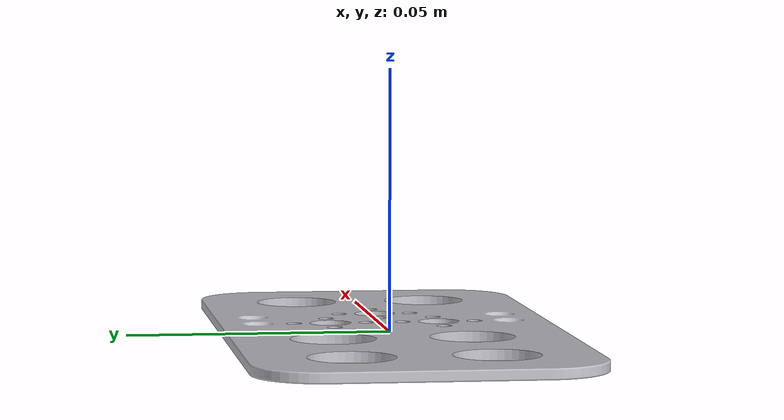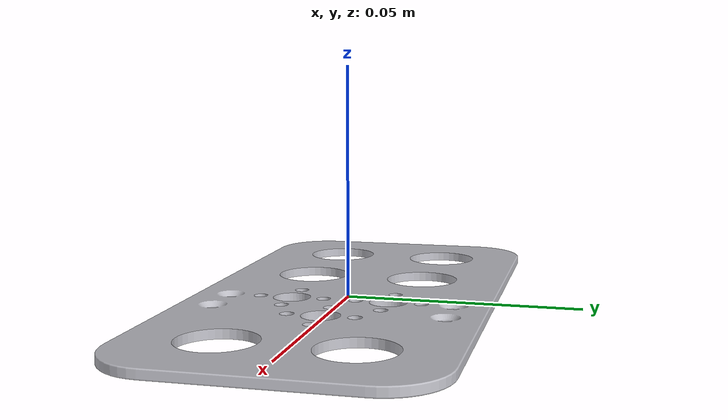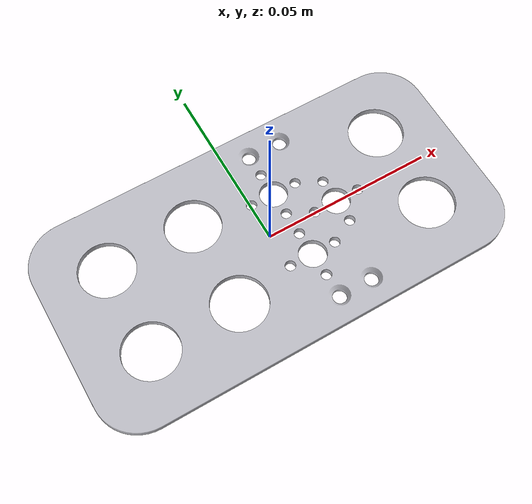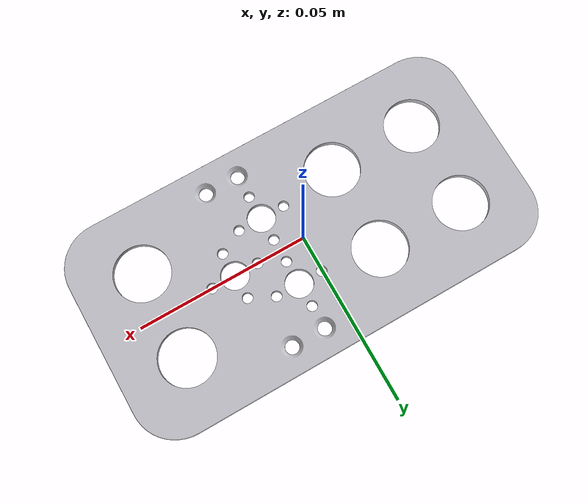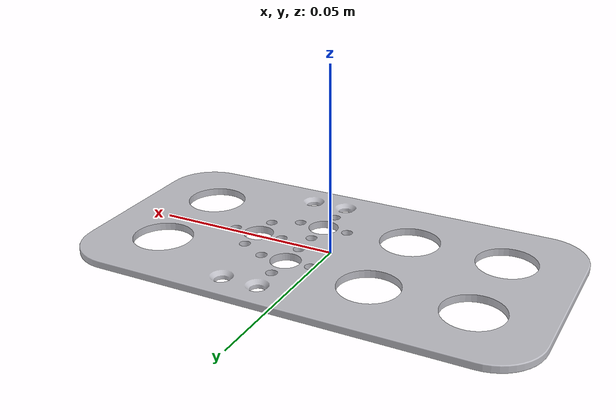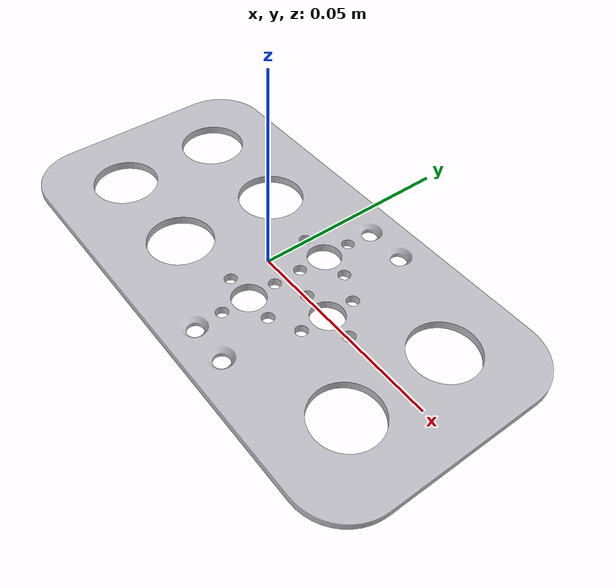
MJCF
<?xml version='1.0' encoding='utf-8'?>
<mujoco model="part_foot">
  <compiler angle="radian" meshdir="." autolimits="true"/>
  <visual>
    <global offwidth="1024" offheight="1024"/>
    <headlight ambient="0.55 0.55 0.55" diffuse="0.6 0.6 0.6" specular="0.2 0.2 0.2"/>
  </visual>
  <default>
    <default class="visual"><geom type="mesh" contype="0" conaffinity="0" group="2" density="0"/></default>
    <default class="collision"><geom type="mesh" group="3"/></default>
  </default>
  <asset>
    <mesh name="foot" file="脚板支架.STL" scale="0.001 0.001 0.001"/>
    <material name="bracket" rgba="0.75 0.75 0.78 1"/>
  </asset>
  <worldbody>
    <!-- source 脚板支架.STL: bbox min 0.000000 0.000000 0.000000 max 123.500000 63.500004 2.000000 mm, size 123.500000 63.500004 2.000000 mm -->
    <body name="foot">
      <geom name="foot_visual" mesh="foot" class="visual" material="bracket" pos="-0.061750 -0.031750 -0.001000"/>
      <geom name="foot_collision" mesh="foot" class="collision" pos="-0.061750 -0.031750 -0.001000" density="2700"/>
    </body>
  </worldbody>
</mujoco>
